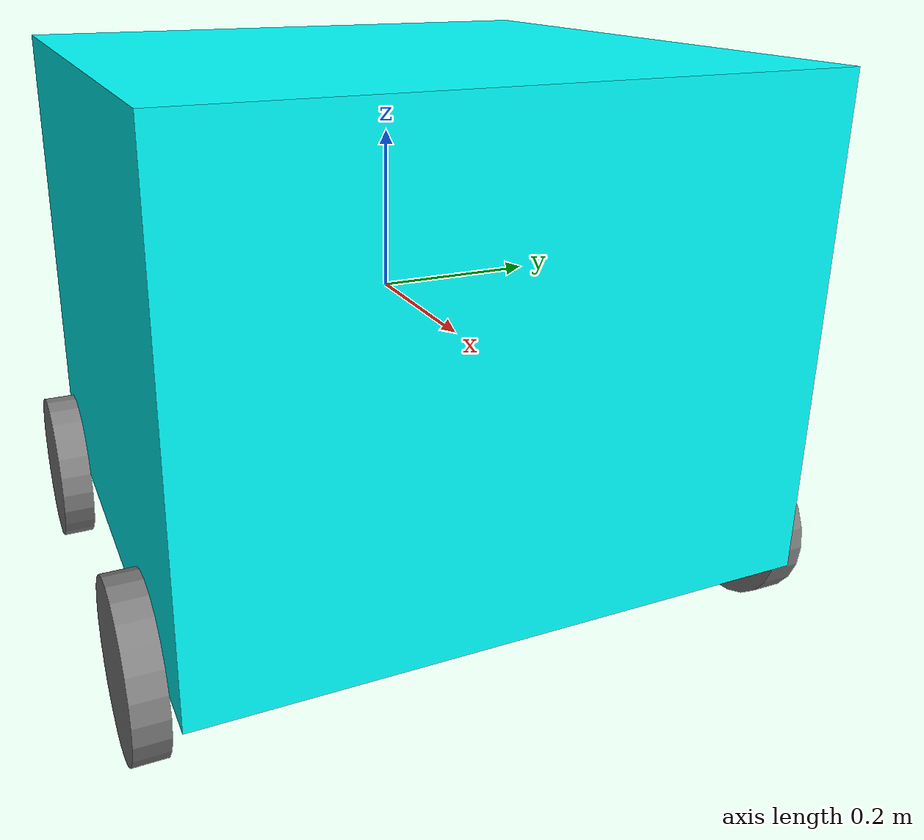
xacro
<?xml version="1.0"?>
<robot name="spex_rover" xmlns:xacro="http://ros.org/wiki/xacro">
  <!--
  The GazeboRosImuSensor Gazebo SensorPlugin

  Defining robot constants
  The base_* properties all define the size of hte robot’s main chassis
  -->
  <xacro:property name="base_width" value="0.75"/>
  <xacro:property name="base_length" value="0.75"/>
  <xacro:property name="base_height" value="0.6"/>

  <!-- The wheel_radius and wheel_width define the shape of the robot’s wheels -->
  <xacro:property name="wheel_radius" value="0.10"/>
  <xacro:property name="wheel_width" value="0.04"/>

  <!-- The wheel_ygap adjusts the gap between the wheel and the chassis along the y-axis -->
  <xacro:property name="wheel_ygap" value="0.025"/>

  <!-- The wheel_zoff and wheel_xoff position the front and back wheels along the z-axis and x-axis
       appropriately -->
  <xacro:property name="wheel_front_zoff" value="0.30"/>
  <xacro:property name="wheel_back_zoff" value="0.30"/>
  <xacro:property name="wheel_front_xoff" value="0.25"/>
  <xacro:property name="wheel_back_xoff" value="0.25"/>

  <!-- Define intertial property macros  -->
  <xacro:macro name="box_inertia" params="m w h d">
    <inertial>
      <origin xyz="0 0 0" rpy="${pi/2} 0 ${pi/2}"/>
      <mass value="${m}"/>
      <inertia ixx="${(m/12) * (h*h + d*d)}" ixy="0.0" ixz="0.0" iyy="${(m/12) * (w*w + d*d)}" iyz="0.0" izz="${(m/12) * (w*w + h*h)}"/>
    </inertial>
  </xacro:macro>

  <xacro:macro name="cylinder_inertia" params="m r h">
    <inertial>
      <origin xyz="0 0 0" rpy="${pi/2} 0 0" />
      <mass value="${m}"/>
      <inertia ixx="${(m/12) * (3*r*r + h*h)}" ixy = "0" ixz = "0" iyy="${(m/12) * (3*r*r + h*h)}" iyz = "0" izz="${(m/2) * (r*r)}"/>
    </inertial>
  </xacro:macro>

  <xacro:macro name="sphere_inertia" params="m r">
    <inertial>
      <mass value="${m}"/>
      <inertia ixx="${(2/5) * m * (r*r)}" ixy="0.0" ixz="0.0" iyy="${(2/5) * m * (r*r)}" iyz="0.0" izz="${(2/5) * m * (r*r)}"/>
    </inertial>
  </xacro:macro>

  <!--
  Robot Base
  A link element describes a rigid part or component of the robot.
  This link will (temporarily) be a large box and will act as the main chassis of
  the robot
  -->
  <link name="base_link">
    <!-- visual tag only applies visual parameters  -->
    <visual>
      <geometry>
        <box size="${base_length} ${base_width} ${base_height}"/>
      </geometry>
      <material name="Cyan">
        <color rgba="0 1.0 1.0 1.0"/>
      </material>
    </visual>
  <collision>
      <!-- using the box_inertia macro defined before to add some inertial properties to our base_link -->
      <geometry>
        <box size="${base_length} ${base_width} ${base_height}"/>
      </geometry>
    </collision>

    <xacro:box_inertia m="40" w="${base_width}" d="${base_length}" h="${base_height}"/>
  </link>

  <link name="base_footprint"/>
  <!--
  we then add a joint to connect it to base_link. In URDF, a joint element describes the
  kinematic and dynamic properties between coordinate frames.
  -->
  <joint name="base_joint" type="fixed">
    <parent link="base_link"/>
    <child link="base_footprint"/>
    <!--
    We take the sum of the wheel_radius and the wheel_zoff to get the appropriate location
    along the z-axis.
    -->
    <origin xyz="0.0 0.0 ${-(wheel_radius+wheel_front_zoff)}" rpy="0 0 0"/>
  </joint>

  <xacro:macro name="wheel" params="prefix x_reflect y_reflect location">
    <link name="${prefix}_link">
      <visual>
        <origin xyz="0 0 0" rpy="${pi/2} 0 0"/>
        <geometry>
            <cylinder radius="${wheel_radius}" length="${wheel_width}"/>
        </geometry>
        <material name="Gray">
          <color rgba="0.5 0.5 0.5 1.0"/>
        </material>
      </visual>
      <!-- Wheel collisions -->
      <collision>
        <origin xyz="0 0 0" rpy="${pi/2} 0 0"/>
        <geometry>
          <cylinder radius="${wheel_radius}" length="${wheel_width}"/>
        </geometry>
      </collision>

      <xacro:cylinder_inertia m="0.5" r="${wheel_radius}" h="${wheel_width}"/>
    </link>

    <!--
    We will define a continuous joint to allow our wheels to freely rotate about an axis.
    This joint also connects our wheel to the base_link at the appropriate location.
    -->
    <xacro:if value="${location == 'front'}">
      <joint name="${prefix}_joint" type="continuous">
        <parent link="base_link"/>
        <child link="${prefix}_link"/>
        <origin xyz="${x_reflect*wheel_front_xoff} ${y_reflect*(base_width/2+wheel_ygap)} ${-wheel_front_zoff}" rpy="0 0 0"/>
        <axis xyz="0 1 0"/>
      </joint>
    </xacro:if>
    <xacro:if value="${location == 'back'}">
      <joint name="${prefix}_joint" type="continuous">
        <parent link="base_link"/>
        <child link="${prefix}_link"/>
        <origin xyz="${x_reflect*wheel_back_xoff} ${y_reflect*(base_width/2+wheel_ygap)} ${-wheel_back_zoff}" rpy="0 0 0"/>
        <axis xyz="0 1 0"/>
      </joint>
    </xacro:if>
  </xacro:macro>

  <!-- Instantiating 4 wheels using the macro created above -->
  <xacro:wheel prefix="drivewhl_fl" x_reflect="1" y_reflect="1" location="front" />
  <xacro:wheel prefix="drivewhl_fr" x_reflect="1" y_reflect="-1" location="front" />
  <xacro:wheel prefix="drivewhl_bl" x_reflect="-1" y_reflect="1" location="back" />
  <xacro:wheel prefix="drivewhl_br" x_reflect="-1" y_reflect="-1" location="back" />

  <link name="imu_link">
  <visual>
    <geometry>
      <box size="0.1 0.1 0.1"/>
    </geometry>
  </visual>

  <collision>
    <geometry>
      <box size="0.1 0.1 0.1"/>
    </geometry>
  </collision>

  <xacro:box_inertia m="0.1" w="0.1" d="0.1" h="0.1"/>
</link>

<joint name="imu_joint" type="fixed">
  <parent link="base_link"/>
  <child link="imu_link"/>
  <origin xyz="0 0 0.01"/>
</joint>
<!-- Setting /demo/imu as the topic to which the IMU will be publishing its information -->
<gazebo reference="imu_link">
  <sensor name="imu_sensor" type="imu">
    <plugin filename="libgazebo_ros_imu_sensor.so" name="imu_plugin">
        <ros>
          <namespace>/demo</namespace>
          <remapping>~/out:=imu</remapping>
        </ros>
        <initial_orientation_as_reference>false</initial_orientation_as_reference>
      </plugin>
      <always_on>true</always_on>
      <update_rate>100</update_rate>
      <visualize>true</visualize>
      <imu>
        <angular_velocity>
          <x>
            <noise type="gaussian">
              <mean>0.0</mean>
              <stddev>2e-4</stddev>
              <bias_mean>0.0000075</bias_mean>
              <bias_stddev>0.0000008</bias_stddev>
            </noise>
          </x>
          <y>
            <noise type="gaussian">
              <mean>0.0</mean>
              <stddev>2e-4</stddev>
              <bias_mean>0.0000075</bias_mean>
              <bias_stddev>0.0000008</bias_stddev>
            </noise>
          </y>
          <z>
            <noise type="gaussian">
              <mean>0.0</mean>
              <stddev>2e-4</stddev>
              <bias_mean>0.0000075</bias_mean>
              <bias_stddev>0.0000008</bias_stddev>
            </noise>
          </z>
        </angular_velocity>
        <linear_acceleration>
          <x>
            <noise type="gaussian">
              <mean>0.0</mean>
              <stddev>1.7e-2</stddev>
              <bias_mean>0.1</bias_mean>
              <bias_stddev>0.001</bias_stddev>
            </noise>
          </x>
          <y>
            <noise type="gaussian">
              <mean>0.0</mean>
              <stddev>1.7e-2</stddev>
              <bias_mean>0.1</bias_mean>
              <bias_stddev>0.001</bias_stddev>
            </noise>
          </y>
          <z>
            <noise type="gaussian">
              <mean>0.0</mean>
              <stddev>1.7e-2</stddev>
              <bias_mean>0.1</bias_mean>
              <bias_stddev>0.001</bias_stddev>
            </noise>
          </z>
        </linear_acceleration>
      </imu>
    </sensor>
  </gazebo>

</robot>
